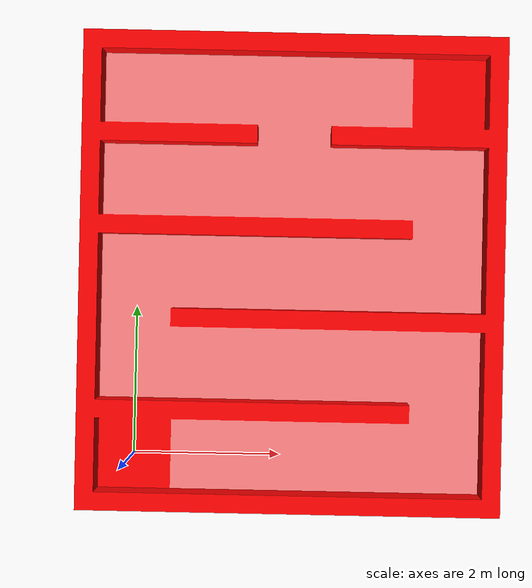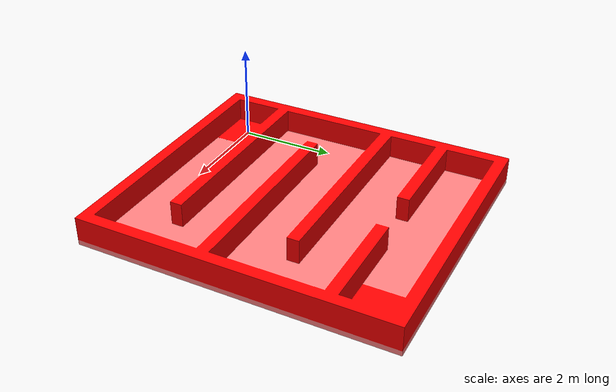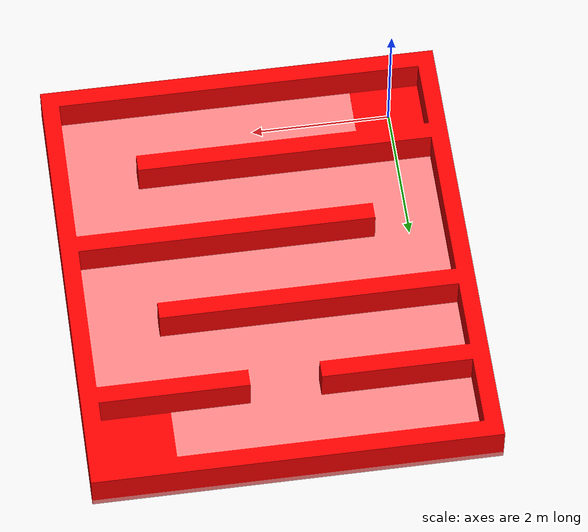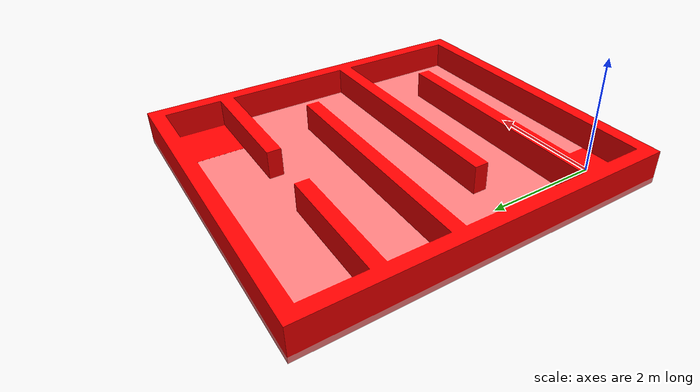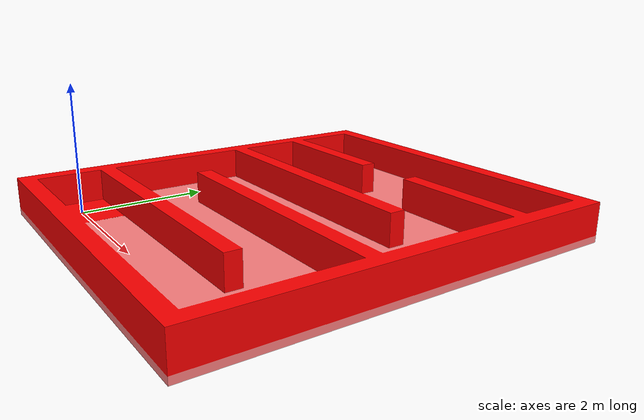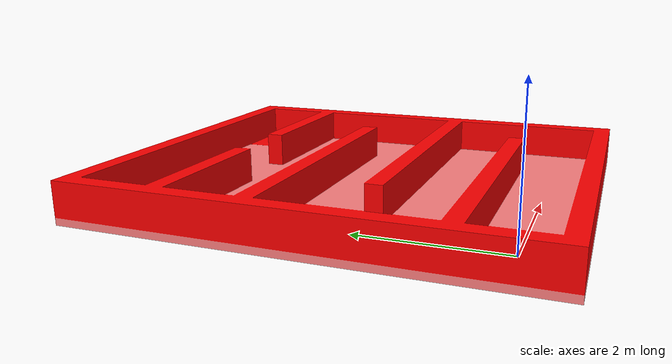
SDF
<?xml version="1.0" ?>
<sdf version="1.6">
  <world name="my_world">
  <physics name="1ms" type="ignored">
    <max_step_size>0.001</max_step_size>
    <real_time_factor>1.0</real_time_factor>
  </physics>

  <plugin
    filename="gz-sim-physics-system"
    name="gz::sim::systems::Physics">
  </plugin>
  <plugin
    filename="gz-sim-user-commands-system"
    name="gz::sim::systems::UserCommands">
  </plugin>
  <plugin
    filename="gz-sim-scene-broadcaster-system"
    name="gz::sim::systems::SceneBroadcaster">
  </plugin>

  <plugin
    filename="gz-sim-sensors-system"
    name="gz::sim::systems::Sensors">
    <render_engine>ogre2</render_engine>
  </plugin>

  <light type="directional" name="sun">
    <cast_shadows>true</cast_shadows>
    <pose>0 0 10 0 0 0</pose>
    <diffuse>0.8 0.8 0.8 1</diffuse>
    <specular>0.2 0.2 0.2 1</specular>
    <attenuation>
      <range>1000</range>
      <constant>0.9</constant>
      <linear>0.01</linear>
      <quadratic>0.001</quadratic>
    </attenuation>
    <direction>-0.5 0.1 -0.9</direction>
  </light>
  <model name="measurement">
    <static>true</static>
    <link name="link">
      <collision name="collision">
        <geometry>
          <mesh>
            <scale>1 1 1</scale>
            <uri>meshes/field_v2.stl</uri>
          </mesh>
        </geometry>
        <surface>
          <friction>
            <ode>
              <mu>1.2</mu>
              <mu2>1.2</mu2>
            </ode>
          </friction>
        </surface>
      </collision>
      <visual name="visual">
        <geometry>
          <mesh>
            <scale>1 1 1</scale>
            <uri>meshes/field_v2.dae</uri>
          </mesh>
        </geometry>
      </visual>
    </link>
  </model>
  </world>
</sdf>
